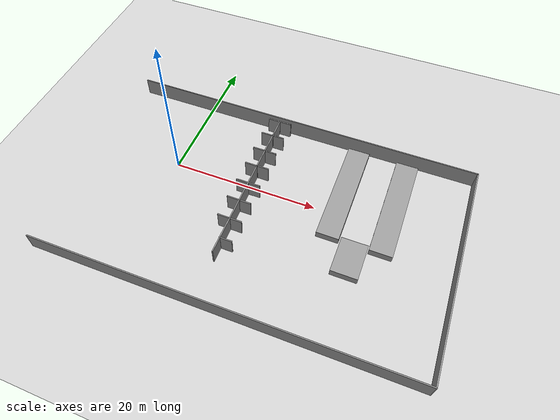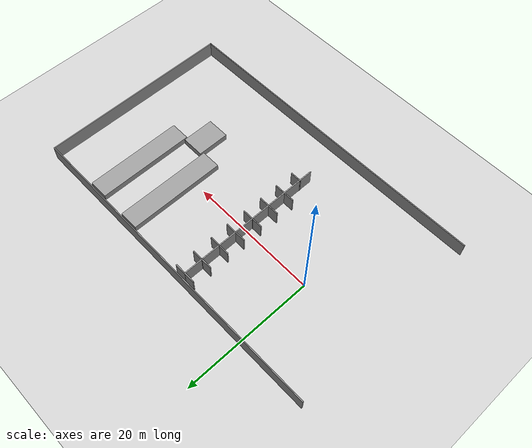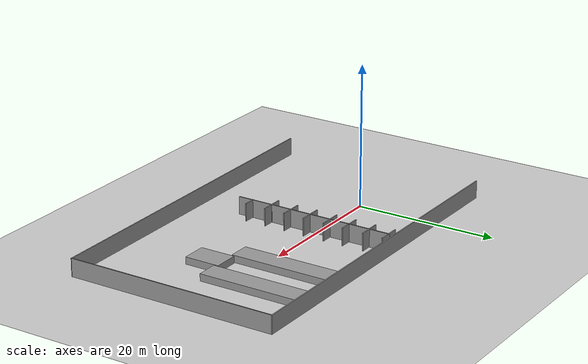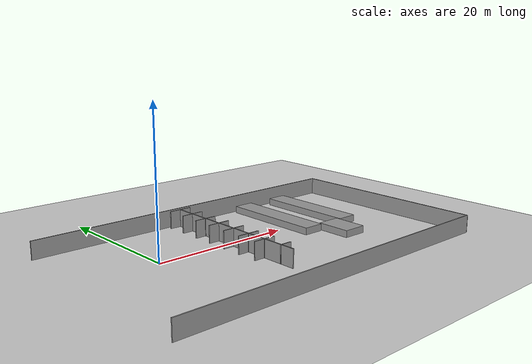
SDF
<sdf version="1.6">
 <world name="default">
  <model name="ground_plane">
   <static>1</static>
   <link name="link">
    <collision name="collision">
     <geometry><plane><normal>0 0 1</normal><size>100 100</size></plane></geometry>
     <surface>
      <contact><collide_bitmask>65535</collide_bitmask></contact>
      <friction><ode><mu>100</mu><mu2>50</mu2></ode></friction>
     </surface>
    </collision>
    <visual name="visual">
     <cast_shadows>0</cast_shadows>
     <geometry><plane><normal>0 0 1</normal><size>100 100</size></plane></geometry>
     <material>
      <script><uri>file://media/materials/scripts/gazebo.material</uri><name>Gazebo/Grey</name></script>
     </material>
    </visual>
   </link>
  </model>
  <model name="Warehouse_Map">
   <link name="Wall_0">
    <pose>-0.000412 -14.8629 0 0 -0 0.007442</pose>
    <visual name="Wall_0_Visual">
     <pose>0 0 1.25 0 -0 0</pose>
     <geometry><box><size>50 0.15 2.5</size></box></geometry>
     <material>
      <script><uri>file://media/materials/scripts/gazebo.material</uri><name>Gazebo/Grey</name></script>
      <ambient>1 1 1 1</ambient>
      <shader type="pixel"/>
     </material>
     <meta><layer>0</layer></meta>
    </visual>
    <collision name="Wall_0_Collision">
     <pose>0 0 1.25 0 -0 0</pose>
     <geometry><box><size>50 0.15 2.5</size></box></geometry>
     <surface>
      <friction>
       <ode><mu>1</mu><mu2>1</mu2><fdir1>0 0 0</fdir1><slip1>0</slip1><slip2>0</slip2></ode>
       <torsional>
        <coefficient>1</coefficient>
        <patch_radius>0</patch_radius>
        <surface_radius>0</surface_radius>
        <use_patch_radius>1</use_patch_radius>
        <ode><slip>0</slip></ode>
       </torsional>
      </friction>
      <bounce><restitution_coefficient>0</restitution_coefficient><threshold>1e+06</threshold></bounce>
      <contact>
       <collide_without_contact>0</collide_without_contact>
       <collide_without_contact_bitmask>1</collide_without_contact_bitmask>
       <collide_bitmask>1</collide_bitmask>
       <ode>
        <soft_cfm>0</soft_cfm>
        <soft_erp>0.2</soft_erp>
        <kp>1e+13</kp>
        <kd>1</kd>
        <max_vel>0.01</max_vel>
        <min_depth>0</min_depth>
       </ode>
       <bullet>
        <split_impulse>1</split_impulse>
        <split_impulse_penetration_threshold>-0.01</split_impulse_penetration_threshold>
        <soft_cfm>0</soft_cfm>
        <soft_erp>0.2</soft_erp>
        <kp>1e+13</kp>
        <kd>1</kd>
       </bullet>
      </contact>
     </surface>
    </collision>
   </link>
   <link name="Wall_10_clone_21_clone_15">
    <pose>-3.7293 14.315 0 0 -0 3.14159</pose>
    <visual name="Wall_10_Visual">
     <pose>0 0 1.25 0 -0 0</pose>
     <geometry><box><size>1.75 0.15 2.5</size></box></geometry>
     <material>
      <script><uri>file://media/materials/scripts/gazebo.material</uri><name>Gazebo/Grey</name></script>
      <ambient>1 1 1 1</ambient>
      <shader type="pixel"/>
     </material>
     <meta><layer>0</layer></meta>
    </visual>
    <collision name="Wall_10_Collision">
     <pose>0 0 1.25 0 -0 0</pose>
     <geometry><box><size>1.75 0.15 2.5</size></box></geometry>
     <surface>
      <friction>
       <ode><mu>1</mu><mu2>1</mu2><fdir1>0 0 0</fdir1><slip1>0</slip1><slip2>0</slip2></ode>
       <torsional>
        <coefficient>1</coefficient>
        <patch_radius>0</patch_radius>
        <surface_radius>0</surface_radius>
        <use_patch_radius>1</use_patch_radius>
        <ode><slip>0</slip></ode>
       </torsional>
      </friction>
      <bounce><restitution_coefficient>0</restitution_coefficient><threshold>1e+06</threshold></bounce>
      <contact>
       <collide_without_contact>0</collide_without_contact>
       <collide_without_contact_bitmask>1</collide_without_contact_bitmask>
       <collide_bitmask>1</collide_bitmask>
       <ode>
        <soft_cfm>0</soft_cfm>
        <soft_erp>0.2</soft_erp>
        <kp>1e+13</kp>
        <kd>1</kd>
        <max_vel>0.01</max_vel>
        <min_depth>0</min_depth>
       </ode>
       <bullet>
        <split_impulse>1</split_impulse>
        <split_impulse_penetration_threshold>-0.01</split_impulse_penetration_threshold>
        <soft_cfm>0</soft_cfm>
        <soft_erp>0.2</soft_erp>
        <kp>1e+13</kp>
        <kd>1</kd>
       </bullet>
      </contact>
     </surface>
    </collision>
   </link>
   <link name="Wall_10_clone_21_clone_16">
    <pose>-2.12793 14.3281 0 0 -0 3.14159</pose>
    <visual name="Wall_10_Visual">
     <pose>0 0 1.25 0 -0 0</pose>
     <geometry><box><size>1.75 0.15 2.5</size></box></geometry>
     <material>
      <script><uri>file://media/materials/scripts/gazebo.material</uri><name>Gazebo/Grey</name></script>
      <ambient>1 1 1 1</ambient>
      <shader type="pixel"/>
     </material>
     <meta><layer>0</layer></meta>
    </visual>
    <collision name="Wall_10_Collision">
     <pose>0 0 1.25 0 -0 0</pose>
     <geometry><box><size>1.75 0.15 2.5</size></box></geometry>
     <surface>
      <friction>
       <ode><mu>1</mu><mu2>1</mu2><fdir1>0 0 0</fdir1><slip1>0</slip1><slip2>0</slip2></ode>
       <torsional>
        <coefficient>1</coefficient>
        <patch_radius>0</patch_radius>
        <surface_radius>0</surface_radius>
        <use_patch_radius>1</use_patch_radius>
        <ode><slip>0</slip></ode>
       </torsional>
      </friction>
      <bounce><restitution_coefficient>0</restitution_coefficient><threshold>1e+06</threshold></bounce>
      <contact>
       <collide_without_contact>0</collide_without_contact>
       <collide_without_contact_bitmask>1</collide_without_contact_bitmask>
       <collide_bitmask>1</collide_bitmask>
       <ode>
        <soft_cfm>0</soft_cfm>
        <soft_erp>0.2</soft_erp>
        <kp>1e+13</kp>
        <kd>1</kd>
        <max_vel>0.01</max_vel>
        <min_depth>0</min_depth>
       </ode>
       <bullet>
        <split_impulse>1</split_impulse>
        <split_impulse_penetration_threshold>-0.01</split_impulse_penetration_threshold>
        <soft_cfm>0</soft_cfm>
        <soft_erp>0.2</soft_erp>
        <kp>1e+13</kp>
        <kd>1</kd>
       </bullet>
      </contact>
     </surface>
    </collision>
   </link>
   <link name="Wall_10_clone_21_clone_17">
    <pose>-3.72044 11.4033 0 0 -0 3.14159</pose>
    <visual name="Wall_10_Visual">
     <pose>0 0 1.25 0 -0 0</pose>
     <geometry><box><size>1.75 0.15 2.5</size></box></geometry>
     <material>
      <script><uri>file://media/materials/scripts/gazebo.material</uri><name>Gazebo/Grey</name></script>
      <ambient>1 1 1 1</ambient>
      <shader type="pixel"/>
     </material>
     <meta><layer>0</layer></meta>
    </visual>
    <collision name="Wall_10_Collision">
     <pose>0 0 1.25 0 -0 0</pose>
     <geometry><box><size>1.75 0.15 2.5</size></box></geometry>
     <surface>
      <friction>
       <ode><mu>1</mu><mu2>1</mu2><fdir1>0 0 0</fdir1><slip1>0</slip1><slip2>0</slip2></ode>
       <torsional>
        <coefficient>1</coefficient>
        <patch_radius>0</patch_radius>
        <surface_radius>0</surface_radius>
        <use_patch_radius>1</use_patch_radius>
        <ode><slip>0</slip></ode>
       </torsional>
      </friction>
      <bounce><restitution_coefficient>0</restitution_coefficient><threshold>1e+06</threshold></bounce>
      <contact>
       <collide_without_contact>0</collide_without_contact>
       <collide_without_contact_bitmask>1</collide_without_contact_bitmask>
       <collide_bitmask>1</collide_bitmask>
       <ode>
        <soft_cfm>0</soft_cfm>
        <soft_erp>0.2</soft_erp>
        <kp>1e+13</kp>
        <kd>1</kd>
        <max_vel>0.01</max_vel>
        <min_depth>0</min_depth>
       </ode>
       <bullet>
        <split_impulse>1</split_impulse>
        <split_impulse_penetration_threshold>-0.01</split_impulse_penetration_threshold>
        <soft_cfm>0</soft_cfm>
        <soft_erp>0.2</soft_erp>
        <kp>1e+13</kp>
        <kd>1</kd>
       </bullet>
      </contact>
     </surface>
    </collision>
   </link>
   <link name="Wall_10_clone_21_clone_18">
    <pose>-3.73765 8.40075 0 0 -0 3.14159</pose>
    <visual name="Wall_10_Visual">
     <pose>0 0 1.25 0 -0 0</pose>
     <geometry><box><size>1.75 0.15 2.5</size></box></geometry>
     <material>
      <script><uri>file://media/materials/scripts/gazebo.material</uri><name>Gazebo/Grey</name></script>
      <ambient>1 1 1 1</ambient>
      <shader type="pixel"/>
     </material>
     <meta><layer>0</layer></meta>
    </visual>
    <collision name="Wall_10_Collision">
     <pose>0 0 1.25 0 -0 0</pose>
     <geometry><box><size>1.75 0.15 2.5</size></box></geometry>
     <surface>
      <friction>
       <ode><mu>1</mu><mu2>1</mu2><fdir1>0 0 0</fdir1><slip1>0</slip1><slip2>0</slip2></ode>
       <torsional>
        <coefficient>1</coefficient>
        <patch_radius>0</patch_radius>
        <surface_radius>0</surface_radius>
        <use_patch_radius>1</use_patch_radius>
        <ode><slip>0</slip></ode>
       </torsional>
      </friction>
      <bounce><restitution_coefficient>0</restitution_coefficient><threshold>1e+06</threshold></bounce>
      <contact>
       <collide_without_contact>0</collide_without_contact>
       <collide_without_contact_bitmask>1</collide_without_contact_bitmask>
       <collide_bitmask>1</collide_bitmask>
       <ode>
        <soft_cfm>0</soft_cfm>
        <soft_erp>0.2</soft_erp>
        <kp>1e+13</kp>
        <kd>1</kd>
        <max_vel>0.01</max_vel>
        <min_depth>0</min_depth>
       </ode>
       <bullet>
        <split_impulse>1</split_impulse>
        <split_impulse_penetration_threshold>-0.01</split_impulse_penetration_threshold>
        <soft_cfm>0</soft_cfm>
        <soft_erp>0.2</soft_erp>
        <kp>1e+13</kp>
        <kd>1</kd>
       </bullet>
      </contact>
     </surface>
    </collision>
   </link>
   <link name="Wall_10_clone_21_clone_19">
    <pose>-3.72806 5.48656 0 0 -0 3.14159</pose>
    <visual name="Wall_10_Visual">
     <pose>0 0 1.25 0 -0 0</pose>
     <geometry><box><size>1.75 0.15 2.5</size></box></geometry>
     <material>
      <script><uri>file://media/materials/scripts/gazebo.material</uri><name>Gazebo/Grey</name></script>
      <ambient>1 1 1 1</ambient>
      <shader type="pixel"/>
     </material>
     <meta><layer>0</layer></meta>
    </visual>
    <collision name="Wall_10_Collision">
     <pose>0 0 1.25 0 -0 0</pose>
     <geometry><box><size>1.75 0.15 2.5</size></box></geometry>
     <surface>
      <friction>
       <ode><mu>1</mu><mu2>1</mu2><fdir1>0 0 0</fdir1><slip1>0</slip1><slip2>0</slip2></ode>
       <torsional>
        <coefficient>1</coefficient>
        <patch_radius>0</patch_radius>
        <surface_radius>0</surface_radius>
        <use_patch_radius>1</use_patch_radius>
        <ode><slip>0</slip></ode>
       </torsional>
      </friction>
      <bounce><restitution_coefficient>0</restitution_coefficient><threshold>1e+06</threshold></bounce>
      <contact>
       <collide_without_contact>0</collide_without_contact>
       <collide_without_contact_bitmask>1</collide_without_contact_bitmask>
       <collide_bitmask>1</collide_bitmask>
       <ode>
        <soft_cfm>0</soft_cfm>
        <soft_erp>0.2</soft_erp>
        <kp>1e+13</kp>
        <kd>1</kd>
        <max_vel>0.01</max_vel>
        <min_depth>0</min_depth>
       </ode>
       <bullet>
        <split_impulse>1</split_impulse>
        <split_impulse_penetration_threshold>-0.01</split_impulse_penetration_threshold>
        <soft_cfm>0</soft_cfm>
        <soft_erp>0.2</soft_erp>
        <kp>1e+13</kp>
        <kd>1</kd>
       </bullet>
      </contact>
     </surface>
    </collision>
   </link>
   <link name="Wall_10_clone_21_clone_20">
    <pose>-3.75053 2.43112 0 0 -0 3.14159</pose>
    <visual name="Wall_10_Visual">
     <pose>0 0 1.25 0 -0 0</pose>
     <geometry><box><size>1.75 0.15 2.5</size></box></geometry>
     <material>
      <script><uri>file://media/materials/scripts/gazebo.material</uri><name>Gazebo/Grey</name></script>
      <ambient>1 1 1 1</ambient>
      <shader type="pixel"/>
     </material>
     <meta><layer>0</layer></meta>
    </visual>
    <collision name="Wall_10_Collision">
     <pose>0 0 1.25 0 -0 0</pose>
     <geometry><box><size>1.75 0.15 2.5</size></box></geometry>
     <surface>
      <friction>
       <ode><mu>1</mu><mu2>1</mu2><fdir1>0 0 0</fdir1><slip1>0</slip1><slip2>0</slip2></ode>
       <torsional>
        <coefficient>1</coefficient>
        <patch_radius>0</patch_radius>
        <surface_radius>0</surface_radius>
        <use_patch_radius>1</use_patch_radius>
        <ode><slip>0</slip></ode>
       </torsional>
      </friction>
      <bounce><restitution_coefficient>0</restitution_coefficient><threshold>1e+06</threshold></bounce>
      <contact>
       <collide_without_contact>0</collide_without_contact>
       <collide_without_contact_bitmask>1</collide_without_contact_bitmask>
       <collide_bitmask>1</collide_bitmask>
       <ode>
        <soft_cfm>0</soft_cfm>
        <soft_erp>0.2</soft_erp>
        <kp>1e+13</kp>
        <kd>1</kd>
        <max_vel>0.01</max_vel>
        <min_depth>0</min_depth>
       </ode>
       <bullet>
        <split_impulse>1</split_impulse>
        <split_impulse_penetration_threshold>-0.01</split_impulse_penetration_threshold>
        <soft_cfm>0</soft_cfm>
        <soft_erp>0.2</soft_erp>
        <kp>1e+13</kp>
        <kd>1</kd>
       </bullet>
      </contact>
     </surface>
    </collision>
   </link>
   <link name="Wall_10_clone_21_clone_21">
    <pose>-3.75447 -0.552222 0 0 -0 3.14159</pose>
    <visual name="Wall_10_Visual">
     <pose>0 0 1.25 0 -0 0</pose>
     <geometry><box><size>1.75 0.15 2.5</size></box></geometry>
     <material>
      <script><uri>file://media/materials/scripts/gazebo.material</uri><name>Gazebo/Grey</name></script>
      <ambient>1 1 1 1</ambient>
      <shader type="pixel"/>
     </material>
     <meta><layer>0</layer></meta>
    </visual>
    <collision name="Wall_10_Collision">
     <pose>0 0 1.25 0 -0 0</pose>
     <geometry><box><size>1.75 0.15 2.5</size></box></geometry>
     <surface>
      <friction>
       <ode><mu>1</mu><mu2>1</mu2><fdir1>0 0 0</fdir1><slip1>0</slip1><slip2>0</slip2></ode>
       <torsional>
        <coefficient>1</coefficient>
        <patch_radius>0</patch_radius>
        <surface_radius>0</surface_radius>
        <use_patch_radius>1</use_patch_radius>
        <ode><slip>0</slip></ode>
       </torsional>
      </friction>
      <bounce><restitution_coefficient>0</restitution_coefficient><threshold>1e+06</threshold></bounce>
      <contact>
       <collide_without_contact>0</collide_without_contact>
       <collide_without_contact_bitmask>1</collide_without_contact_bitmask>
       <collide_bitmask>1</collide_bitmask>
       <ode>
        <soft_cfm>0</soft_cfm>
        <soft_erp>0.2</soft_erp>
        <kp>1e+13</kp>
        <kd>1</kd>
        <max_vel>0.01</max_vel>
        <min_depth>0</min_depth>
       </ode>
       <bullet>
        <split_impulse>1</split_impulse>
        <split_impulse_penetration_threshold>-0.01</split_impulse_penetration_threshold>
        <soft_cfm>0</soft_cfm>
        <soft_erp>0.2</soft_erp>
        <kp>1e+13</kp>
        <kd>1</kd>
       </bullet>
      </contact>
     </surface>
    </collision>
   </link>
   <link name="Wall_10_clone_21_clone_22">
    <pose>-3.72265 -3.56408 0 0 -0 3.14159</pose>
    <visual name="Wall_10_Visual">
     <pose>0 0 1.25 0 -0 0</pose>
     <geometry><box><size>1.75 0.15 2.5</size></box></geometry>
     <material>
      <script><uri>file://media/materials/scripts/gazebo.material</uri><name>Gazebo/Grey</name></script>
      <ambient>1 1 1 1</ambient>
      <shader type="pixel"/>
     </material>
     <meta><layer>0</layer></meta>
    </visual>
    <collision name="Wall_10_Collision">
     <pose>0 0 1.25 0 -0 0</pose>
     <geometry><box><size>1.75 0.15 2.5</size></box></geometry>
     <surface>
      <friction>
       <ode><mu>1</mu><mu2>1</mu2><fdir1>0 0 0</fdir1><slip1>0</slip1><slip2>0</slip2></ode>
       <torsional>
        <coefficient>1</coefficient>
        <patch_radius>0</patch_radius>
        <surface_radius>0</surface_radius>
        <use_patch_radius>1</use_patch_radius>
        <ode><slip>0</slip></ode>
       </torsional>
      </friction>
      <bounce><restitution_coefficient>0</restitution_coefficient><threshold>1e+06</threshold></bounce>
      <contact>
       <collide_without_contact>0</collide_without_contact>
       <collide_without_contact_bitmask>1</collide_without_contact_bitmask>
       <collide_bitmask>1</collide_bitmask>
       <ode>
        <soft_cfm>0</soft_cfm>
        <soft_erp>0.2</soft_erp>
        <kp>1e+13</kp>
        <kd>1</kd>
        <max_vel>0.01</max_vel>
        <min_depth>0</min_depth>
       </ode>
       <bullet>
        <split_impulse>1</split_impulse>
        <split_impulse_penetration_threshold>-0.01</split_impulse_penetration_threshold>
        <soft_cfm>0</soft_cfm>
        <soft_erp>0.2</soft_erp>
        <kp>1e+13</kp>
        <kd>1</kd>
       </bullet>
      </contact>
     </surface>
    </collision>
   </link>
   <link name="Wall_10_clone_21_clone_24">
    <pose>-2.17277 -6.58574 0 0 -0 3.14159</pose>
    <visual name="Wall_10_Visual">
     <pose>0 0 1.25 0 -0 0</pose>
     <geometry><box><size>1.75 0.15 2.5</size></box></geometry>
     <material>
      <script><uri>file://media/materials/scripts/gazebo.material</uri><name>Gazebo/Grey</name></script>
      <ambient>1 1 1 1</ambient>
      <shader type="pixel"/>
     </material>
     <meta><layer>0</layer></meta>
    </visual>
    <collision name="Wall_10_Collision">
     <pose>0 0 1.25 0 -0 0</pose>
     <geometry><box><size>1.75 0.15 2.5</size></box></geometry>
     <surface>
      <friction>
       <ode><mu>1</mu><mu2>1</mu2><fdir1>0 0 0</fdir1><slip1>0</slip1><slip2>0</slip2></ode>
       <torsional>
        <coefficient>1</coefficient>
        <patch_radius>0</patch_radius>
        <surface_radius>0</surface_radius>
        <use_patch_radius>1</use_patch_radius>
        <ode><slip>0</slip></ode>
       </torsional>
      </friction>
      <bounce><restitution_coefficient>0</restitution_coefficient><threshold>1e+06</threshold></bounce>
      <contact>
       <collide_without_contact>0</collide_without_contact>
       <collide_without_contact_bitmask>1</collide_without_contact_bitmask>
       <collide_bitmask>1</collide_bitmask>
       <ode>
        <soft_cfm>0</soft_cfm>
        <soft_erp>0.2</soft_erp>
        <kp>1e+13</kp>
        <kd>1</kd>
        <max_vel>0.01</max_vel>
        <min_depth>0</min_depth>
       </ode>
       <bullet>
        <split_impulse>1</split_impulse>
        <split_impulse_penetration_threshold>-0.01</split_impulse_penetration_threshold>
        <soft_cfm>0</soft_cfm>
        <soft_erp>0.2</soft_erp>
        <kp>1e+13</kp>
        <kd>1</kd>
       </bullet>
      </contact>
     </surface>
    </collision>
   </link>
   <link name="Wall_10_clone_21_clone_25">
    <pose>-2.18669 -3.57219 0 0 -0 3.14159</pose>
    <visual name="Wall_10_Visual">
     <pose>0 0 1.25 0 -0 0</pose>
     <geometry><box><size>1.75 0.15 2.5</size></box></geometry>
     <material>
      <script><uri>file://media/materials/scripts/gazebo.material</uri><name>Gazebo/Grey</name></script>
      <ambient>1 1 1 1</ambient>
      <shader type="pixel"/>
     </material>
     <meta><layer>0</layer></meta>
    </visual>
    <collision name="Wall_10_Collision">
     <pose>0 0 1.25 0 -0 0</pose>
     <geometry><box><size>1.75 0.15 2.5</size></box></geometry>
     <surface>
      <friction>
       <ode><mu>1</mu><mu2>1</mu2><fdir1>0 0 0</fdir1><slip1>0</slip1><slip2>0</slip2></ode>
       <torsional>
        <coefficient>1</coefficient>
        <patch_radius>0</patch_radius>
        <surface_radius>0</surface_radius>
        <use_patch_radius>1</use_patch_radius>
        <ode><slip>0</slip></ode>
       </torsional>
      </friction>
      <bounce><restitution_coefficient>0</restitution_coefficient><threshold>1e+06</threshold></bounce>
      <contact>
       <collide_without_contact>0</collide_without_contact>
       <collide_without_contact_bitmask>1</collide_without_contact_bitmask>
       <collide_bitmask>1</collide_bitmask>
       <ode>
        <soft_cfm>0</soft_cfm>
        <soft_erp>0.2</soft_erp>
        <kp>1e+13</kp>
        <kd>1</kd>
        <max_vel>0.01</max_vel>
        <min_depth>0</min_depth>
       </ode>
       <bullet>
        <split_impulse>1</split_impulse>
        <split_impulse_penetration_threshold>-0.01</split_impulse_penetration_threshold>
        <soft_cfm>0</soft_cfm>
        <soft_erp>0.2</soft_erp>
        <kp>1e+13</kp>
        <kd>1</kd>
       </bullet>
      </contact>
     </surface>
    </collision>
   </link>
   <link name="Wall_10_clone_21_clone_26">
    <pose>-2.18422 -0.576818 0 0 -0 3.14159</pose>
    <visual name="Wall_10_Visual">
     <pose>0 0 1.25 0 -0 0</pose>
     <geometry><box><size>1.75 0.15 2.5</size></box></geometry>
     <material>
      <script><uri>file://media/materials/scripts/gazebo.material</uri><name>Gazebo/Grey</name></script>
      <ambient>1 1 1 1</ambient>
      <shader type="pixel"/>
     </material>
     <meta><layer>0</layer></meta>
    </visual>
    <collision name="Wall_10_Collision">
     <pose>0 0 1.25 0 -0 0</pose>
     <geometry><box><size>1.75 0.15 2.5</size></box></geometry>
     <surface>
      <friction>
       <ode><mu>1</mu><mu2>1</mu2><fdir1>0 0 0</fdir1><slip1>0</slip1><slip2>0</slip2></ode>
       <torsional>
        <coefficient>1</coefficient>
        <patch_radius>0</patch_radius>
        <surface_radius>0</surface_radius>
        <use_patch_radius>1</use_patch_radius>
        <ode><slip>0</slip></ode>
       </torsional>
      </friction>
      <bounce><restitution_coefficient>0</restitution_coefficient><threshold>1e+06</threshold></bounce>
      <contact>
       <collide_without_contact>0</collide_without_contact>
       <collide_without_contact_bitmask>1</collide_without_contact_bitmask>
       <collide_bitmask>1</collide_bitmask>
       <ode>
        <soft_cfm>0</soft_cfm>
        <soft_erp>0.2</soft_erp>
        <kp>1e+13</kp>
        <kd>1</kd>
        <max_vel>0.01</max_vel>
        <min_depth>0</min_depth>
       </ode>
       <bullet>
        <split_impulse>1</split_impulse>
        <split_impulse_penetration_threshold>-0.01</split_impulse_penetration_threshold>
        <soft_cfm>0</soft_cfm>
        <soft_erp>0.2</soft_erp>
        <kp>1e+13</kp>
        <kd>1</kd>
       </bullet>
      </contact>
     </surface>
    </collision>
   </link>
   <link name="Wall_10_clone_21_clone_27">
    <pose>-2.14965 2.44399 0 0 -0 3.14159</pose>
    <visual name="Wall_10_Visual">
     <pose>0 0 1.25 0 -0 0</pose>
     <geometry><box><size>1.75 0.15 2.5</size></box></geometry>
     <material>
      <script><uri>file://media/materials/scripts/gazebo.material</uri><name>Gazebo/Grey</name></script>
      <ambient>1 1 1 1</ambient>
      <shader type="pixel"/>
     </material>
     <meta><layer>0</layer></meta>
    </visual>
    <collision name="Wall_10_Collision">
     <pose>0 0 1.25 0 -0 0</pose>
     <geometry><box><size>1.75 0.15 2.5</size></box></geometry>
     <surface>
      <friction>
       <ode><mu>1</mu><mu2>1</mu2><fdir1>0 0 0</fdir1><slip1>0</slip1><slip2>0</slip2></ode>
       <torsional>
        <coefficient>1</coefficient>
        <patch_radius>0</patch_radius>
        <surface_radius>0</surface_radius>
        <use_patch_radius>1</use_patch_radius>
        <ode><slip>0</slip></ode>
       </torsional>
      </friction>
      <bounce><restitution_coefficient>0</restitution_coefficient><threshold>1e+06</threshold></bounce>
      <contact>
       <collide_without_contact>0</collide_without_contact>
       <collide_without_contact_bitmask>1</collide_without_contact_bitmask>
       <collide_bitmask>1</collide_bitmask>
       <ode>
        <soft_cfm>0</soft_cfm>
        <soft_erp>0.2</soft_erp>
        <kp>1e+13</kp>
        <kd>1</kd>
        <max_vel>0.01</max_vel>
        <min_depth>0</min_depth>
       </ode>
       <bullet>
        <split_impulse>1</split_impulse>
        <split_impulse_penetration_threshold>-0.01</split_impulse_penetration_threshold>
        <soft_cfm>0</soft_cfm>
        <soft_erp>0.2</soft_erp>
        <kp>1e+13</kp>
        <kd>1</kd>
       </bullet>
      </contact>
     </surface>
    </collision>
   </link>
   <link name="Wall_10_clone_21_clone_28">
    <pose>-2.13443 5.51692 0 0 -0 3.14159</pose>
    <visual name="Wall_10_Visual">
     <pose>0 0 1.25 0 -0 0</pose>
     <geometry><box><size>1.75 0.15 2.5</size></box></geometry>
     <material>
      <script><uri>file://media/materials/scripts/gazebo.material</uri><name>Gazebo/Grey</name></script>
      <ambient>1 1 1 1</ambient>
      <shader type="pixel"/>
     </material>
     <meta><layer>0</layer></meta>
    </visual>
    <collision name="Wall_10_Collision">
     <pose>0 0 1.25 0 -0 0</pose>
     <geometry><box><size>1.75 0.15 2.5</size></box></geometry>
     <surface>
      <friction>
       <ode><mu>1</mu><mu2>1</mu2><fdir1>0 0 0</fdir1><slip1>0</slip1><slip2>0</slip2></ode>
       <torsional>
        <coefficient>1</coefficient>
        <patch_radius>0</patch_radius>
        <surface_radius>0</surface_radius>
        <use_patch_radius>1</use_patch_radius>
        <ode><slip>0</slip></ode>
       </torsional>
      </friction>
      <bounce><restitution_coefficient>0</restitution_coefficient><threshold>1e+06</threshold></bounce>
      <contact>
       <collide_without_contact>0</collide_without_contact>
       <collide_without_contact_bitmask>1</collide_without_contact_bitmask>
       <collide_bitmask>1</collide_bitmask>
       <ode>
        <soft_cfm>0</soft_cfm>
        <soft_erp>0.2</soft_erp>
        <kp>1e+13</kp>
        <kd>1</kd>
        <max_vel>0.01</max_vel>
        <min_depth>0</min_depth>
       </ode>
       <bullet>
        <split_impulse>1</split_impulse>
        <split_impulse_penetration_threshold>-0.01</split_impulse_penetration_threshold>
        <soft_cfm>0</soft_cfm>
        <soft_erp>0.2</soft_erp>
        <kp>1e+13</kp>
        <kd>1</kd>
       </bullet>
      </contact>
     </surface>
    </collision>
   </link>
   <link name="Wall_10_clone_21_clone_29">
    <pose>-2.18984 8.37839 0 0 -0 3.14159</pose>
    <visual name="Wall_10_Visual">
     <pose>0 0 1.25 0 -0 0</pose>
     <geometry><box><size>1.75 0.15 2.5</size></box></geometry>
     <material>
      <script><uri>file://media/materials/scripts/gazebo.material</uri><name>Gazebo/Grey</name></script>
      <ambient>1 1 1 1</ambient>
      <shader type="pixel"/>
     </material>
     <meta><layer>0</layer></meta>
    </visual>
    <collision name="Wall_10_Collision">
     <pose>0 0 1.25 0 -0 0</pose>
     <geometry><box><size>1.75 0.15 2.5</size></box></geometry>
     <surface>
      <friction>
       <ode><mu>1</mu><mu2>1</mu2><fdir1>0 0 0</fdir1><slip1>0</slip1><slip2>0</slip2></ode>
       <torsional>
        <coefficient>1</coefficient>
        <patch_radius>0</patch_radius>
        <surface_radius>0</surface_radius>
        <use_patch_radius>1</use_patch_radius>
        <ode><slip>0</slip></ode>
       </torsional>
      </friction>
      <bounce><restitution_coefficient>0</restitution_coefficient><threshold>1e+06</threshold></bounce>
      <contact>
       <collide_without_contact>0</collide_without_contact>
       <collide_without_contact_bitmask>1</collide_without_contact_bitmask>
       <collide_bitmask>1</collide_bitmask>
       <ode>
        <soft_cfm>0</soft_cfm>
        <soft_erp>0.2</soft_erp>
        <kp>1e+13</kp>
        <kd>1</kd>
        <max_vel>0.01</max_vel>
        <min_depth>0</min_depth>
       </ode>
       <bullet>
        <split_impulse>1</split_impulse>
        <split_impulse_penetration_threshold>-0.01</split_impulse_penetration_threshold>
        <soft_cfm>0</soft_cfm>
        <soft_erp>0.2</soft_erp>
        <kp>1e+13</kp>
        <kd>1</kd>
       </bullet>
      </contact>
     </surface>
    </collision>
   </link>
   <link name="Wall_10_clone_21_clone_30">
    <pose>-2.1729 11.4342 0 0 -0 3.14159</pose>
    <visual name="Wall_10_Visual">
     <pose>0 0 1.25 0 -0 0</pose>
     <geometry><box><size>1.75 0.15 2.5</size></box></geometry>
     <material>
      <script><uri>file://media/materials/scripts/gazebo.material</uri><name>Gazebo/Grey</name></script>
      <ambient>1 1 1 1</ambient>
      <shader type="pixel"/>
     </material>
     <meta><layer>0</layer></meta>
    </visual>
    <collision name="Wall_10_Collision">
     <pose>0 0 1.25 0 -0 0</pose>
     <geometry><box><size>1.75 0.15 2.5</size></box></geometry>
     <surface>
      <friction>
       <ode><mu>1</mu><mu2>1</mu2><fdir1>0 0 0</fdir1><slip1>0</slip1><slip2>0</slip2></ode>
       <torsional>
        <coefficient>1</coefficient>
        <patch_radius>0</patch_radius>
        <surface_radius>0</surface_radius>
        <use_patch_radius>1</use_patch_radius>
        <ode><slip>0</slip></ode>
       </torsional>
      </friction>
      <bounce><restitution_coefficient>0</restitution_coefficient><threshold>1e+06</threshold></bounce>
      <contact>
       <collide_without_contact>0</collide_without_contact>
       <collide_without_contact_bitmask>1</collide_without_contact_bitmask>
       <collide_bitmask>1</collide_bitmask>
       <ode>
        <soft_cfm>0</soft_cfm>
        <soft_erp>0.2</soft_erp>
        <kp>1e+13</kp>
        <kd>1</kd>
        <max_vel>0.01</max_vel>
        <min_depth>0</min_depth>
       </ode>
       <bullet>
        <split_impulse>1</split_impulse>
        <split_impulse_penetration_threshold>-0.01</split_impulse_penetration_threshold>
        <soft_cfm>0</soft_cfm>
        <soft_erp>0.2</soft_erp>
        <kp>1e+13</kp>
        <kd>1</kd>
       </bullet>
      </contact>
     </surface>
    </collision>
   </link>
   <link name="Wall_11_clone_1">
    <pose>-2.93469 2.78624 0 0 0 -1.5708</pose>
    <visual name="Wall_11_Visual">
     <pose>0 0 1.25 0 -0 0</pose>
     <geometry><box><size>23 0.15 2.5</size></box></geometry>
     <material>
      <script><uri>file://media/materials/scripts/gazebo.material</uri><name>Gazebo/Grey</name></script>
      <ambient>1 1 1 1</ambient>
      <shader type="pixel"/>
     </material>
     <meta><layer>0</layer></meta>
    </visual>
    <collision name="Wall_11_Collision">
     <pose>0 0 1.25 0 -0 0</pose>
     <geometry><box><size>23 0.15 2.5</size></box></geometry>
     <surface>
      <friction>
       <ode><mu>1</mu><mu2>1</mu2><fdir1>0 0 0</fdir1><slip1>0</slip1><slip2>0</slip2></ode>
       <torsional>
        <coefficient>1</coefficient>
        <patch_radius>0</patch_radius>
        <surface_radius>0</surface_radius>
        <use_patch_radius>1</use_patch_radius>
        <ode><slip>0</slip></ode>
       </torsional>
      </friction>
      <bounce><restitution_coefficient>0</restitution_coefficient><threshold>1e+06</threshold></bounce>
      <contact>
       <collide_without_contact>0</collide_without_contact>
       <collide_without_contact_bitmask>1</collide_without_contact_bitmask>
       <collide_bitmask>1</collide_bitmask>
       <ode>
        <soft_cfm>0</soft_cfm>
        <soft_erp>0.2</soft_erp>
        <kp>1e+13</kp>
        <kd>1</kd>
        <max_vel>0.01</max_vel>
        <min_depth>0</min_depth>
       </ode>
       <bullet>
        <split_impulse>1</split_impulse>
        <split_impulse_penetration_threshold>-0.01</split_impulse_penetration_threshold>
        <soft_cfm>0</soft_cfm>
        <soft_erp>0.2</soft_erp>
        <kp>1e+13</kp>
        <kd>1</kd>
       </bullet>
      </contact>
     </surface>
    </collision>
   </link>
   <link name="Wall_4">
    <pose>24.9246 0.123895 0 0 -0 1.57075</pose>
    <visual name="Wall_4_Visual">
     <pose>0 0 1.25 0 -0 0</pose>
     <geometry><box><size>29.7525 0.15 2.5</size></box></geometry>
     <material>
      <script><uri>file://media/materials/scripts/gazebo.material</uri><name>Gazebo/Grey</name></script>
      <ambient>1 1 1 1</ambient>
      <shader type="pixel"/>
     </material>
     <meta><layer>0</layer></meta>
    </visual>
    <collision name="Wall_4_Collision">
     <pose>0 0 1.25 0 -0 0</pose>
     <geometry><box><size>29.7525 0.15 2.5</size></box></geometry>
     <surface>
      <friction>
       <ode><mu>1</mu><mu2>1</mu2><fdir1>0 0 0</fdir1><slip1>0</slip1><slip2>0</slip2></ode>
       <torsional>
        <coefficient>1</coefficient>
        <patch_radius>0</patch_radius>
        <surface_radius>0</surface_radius>
        <use_patch_radius>1</use_patch_radius>
        <ode><slip>0</slip></ode>
       </torsional>
      </friction>
      <bounce><restitution_coefficient>0</restitution_coefficient><threshold>1e+06</threshold></bounce>
      <contact>
       <collide_without_contact>0</collide_without_contact>
       <collide_without_contact_bitmask>1</collide_without_contact_bitmask>
       <collide_bitmask>1</collide_bitmask>
       <ode>
        <soft_cfm>0</soft_cfm>
        <soft_erp>0.2</soft_erp>
        <kp>1e+13</kp>
        <kd>1</kd>
        <max_vel>0.01</max_vel>
        <min_depth>0</min_depth>
       </ode>
       <bullet>
        <split_impulse>1</split_impulse>
        <split_impulse_penetration_threshold>-0.01</split_impulse_penetration_threshold>
        <soft_cfm>0</soft_cfm>
        <soft_erp>0.2</soft_erp>
        <kp>1e+13</kp>
        <kd>1</kd>
       </bullet>
      </contact>
     </surface>
    </collision>
   </link>
   <link name="Wall_7">
    <pose>0.000278 15.0489 0 0 -0 3.14159</pose>
    <visual name="Wall_7_Visual">
     <pose>0 0 1.25 0 -0 0</pose>
     <geometry><box><size>50 0.15 2.5</size></box></geometry>
     <material>
      <script><uri>file://media/materials/scripts/gazebo.material</uri><name>Gazebo/Grey</name></script>
      <ambient>1 1 1 1</ambient>
      <shader type="pixel"/>
     </material>
     <meta><layer>0</layer></meta>
    </visual>
    <collision name="Wall_7_Collision">
     <pose>0 0 1.25 0 -0 0</pose>
     <geometry><box><size>50 0.15 2.5</size></box></geometry>
     <surface>
      <friction>
       <ode><mu>1</mu><mu2>1</mu2><fdir1>0 0 0</fdir1><slip1>0</slip1><slip2>0</slip2></ode>
       <torsional>
        <coefficient>1</coefficient>
        <patch_radius>0</patch_radius>
        <surface_radius>0</surface_radius>
        <use_patch_radius>1</use_patch_radius>
        <ode><slip>0</slip></ode>
       </torsional>
      </friction>
      <bounce><restitution_coefficient>0</restitution_coefficient><threshold>1e+06</threshold></bounce>
      <contact>
       <collide_without_contact>0</collide_without_contact>
       <collide_without_contact_bitmask>1</collide_without_contact_bitmask>
       <collide_bitmask>1</collide_bitmask>
       <ode>
        <soft_cfm>0</soft_cfm>
        <soft_erp>0.2</soft_erp>
        <kp>1e+13</kp>
        <kd>1</kd>
        <max_vel>0.01</max_vel>
        <min_depth>0</min_depth>
       </ode>
       <bullet>
        <split_impulse>1</split_impulse>
        <split_impulse_penetration_threshold>-0.01</split_impulse_penetration_threshold>
        <soft_cfm>0</soft_cfm>
        <soft_erp>0.2</soft_erp>
        <kp>1e+13</kp>
        <kd>1</kd>
       </bullet>
      </contact>
     </surface>
    </collision>
   </link>
   <link name="link_2">
    <inertial>
     <mass>1</mass>
     <inertia>
      <ixx>0.166667</ixx>
      <ixy>0</ixy>
      <ixz>0</ixz>
      <iyy>0.166667</iyy>
      <iyz>0</iyz>
      <izz>0.166667</izz>
     </inertia>
    </inertial>
    <pose>9.03197 6.8986 0.5 0 -0 0</pose>
    <visual name="visual">
     <geometry><box><size>3 15 1</size></box></geometry>
     <material>
      <lighting>1</lighting>
      <script><uri>file://media/materials/scripts/gazebo.material</uri><name>Gazebo/Grey</name></script>
      <shader type="pixel"><normal_map>__default__</normal_map></shader>
      <ambient>0.3 0.3 0.3 1</ambient>
      <diffuse>0.7 0.7 0.7 1</diffuse>
      <specular>0.01 0.01 0.01 1</specular>
      <emissive>0 0 0 1</emissive>
     </material>
    </visual>
    <collision name="collision">
     <geometry><box><size>1 1 1</size></box></geometry>
     <surface>
      <friction>
       <ode><mu>1</mu><mu2>1</mu2><fdir1>0 0 0</fdir1><slip1>0</slip1><slip2>0</slip2></ode>
       <torsional>
        <coefficient>1</coefficient>
        <patch_radius>0</patch_radius>
        <surface_radius>0</surface_radius>
        <use_patch_radius>1</use_patch_radius>
        <ode><slip>0</slip></ode>
       </torsional>
      </friction>
      <bounce><restitution_coefficient>0</restitution_coefficient><threshold>1e+06</threshold></bounce>
      <contact>
       <collide_without_contact>0</collide_without_contact>
       <collide_without_contact_bitmask>1</collide_without_contact_bitmask>
       <collide_bitmask>1</collide_bitmask>
       <ode>
        <soft_cfm>0</soft_cfm>
        <soft_erp>0.2</soft_erp>
        <kp>1e+13</kp>
        <kd>1</kd>
        <max_vel>0.01</max_vel>
        <min_depth>0</min_depth>
       </ode>
       <bullet>
        <split_impulse>1</split_impulse>
        <split_impulse_penetration_threshold>-0.01</split_impulse_penetration_threshold>
        <soft_cfm>0</soft_cfm>
        <soft_erp>0.2</soft_erp>
        <kp>1e+13</kp>
        <kd>1</kd>
       </bullet>
      </contact>
     </surface>
    </collision>
   </link>
   <link name="link_2_clone">
    <inertial>
     <mass>1</mass>
     <inertia>
      <ixx>0.166667</ixx>
      <ixy>0</ixy>
      <ixz>0</ixz>
      <iyy>0.166667</iyy>
      <iyz>0</iyz>
      <izz>0.166667</izz>
     </inertia>
    </inertial>
    <pose>15.9013 6.85249 0.5 0 -0 0</pose>
    <visual name="visual">
     <geometry><box><size>3 15 1</size></box></geometry>
     <material>
      <lighting>1</lighting>
      <script><uri>file://media/materials/scripts/gazebo.material</uri><name>Gazebo/Grey</name></script>
      <shader type="pixel"><normal_map>__default__</normal_map></shader>
      <ambient>0.3 0.3 0.3 1</ambient>
      <diffuse>0.7 0.7 0.7 1</diffuse>
      <specular>0.01 0.01 0.01 1</specular>
      <emissive>0 0 0 1</emissive>
     </material>
    </visual>
    <collision name="collision">
     <geometry><box><size>1 1 1</size></box></geometry>
     <surface>
      <friction>
       <ode><mu>1</mu><mu2>1</mu2><fdir1>0 0 0</fdir1><slip1>0</slip1><slip2>0</slip2></ode>
       <torsional>
        <coefficient>1</coefficient>
        <patch_radius>0</patch_radius>
        <surface_radius>0</surface_radius>
        <use_patch_radius>1</use_patch_radius>
        <ode><slip>0</slip></ode>
       </torsional>
      </friction>
      <bounce><restitution_coefficient>0</restitution_coefficient><threshold>1e+06</threshold></bounce>
      <contact>
       <collide_without_contact>0</collide_without_contact>
       <collide_without_contact_bitmask>1</collide_without_contact_bitmask>
       <collide_bitmask>1</collide_bitmask>
       <ode>
        <soft_cfm>0</soft_cfm>
        <soft_erp>0.2</soft_erp>
        <kp>1e+13</kp>
        <kd>1</kd>
        <max_vel>0.01</max_vel>
        <min_depth>0</min_depth>
       </ode>
       <bullet>
        <split_impulse>1</split_impulse>
        <split_impulse_penetration_threshold>-0.01</split_impulse_penetration_threshold>
        <soft_cfm>0</soft_cfm>
        <soft_erp>0.2</soft_erp>
        <kp>1e+13</kp>
        <kd>1</kd>
       </bullet>
      </contact>
     </surface>
    </collision>
   </link>
   <link name="link_2_clone_0">
    <inertial>
     <mass>1</mass>
     <inertia>
      <ixx>0.166667</ixx>
      <ixy>0</ixy>
      <ixz>0</ixz>
      <iyy>0.166667</iyy>
      <iyz>0</iyz>
      <izz>0.166667</izz>
     </inertia>
    </inertial>
    <pose>12.5024 -2.61659 0.5 0 -0 0</pose>
    <visual name="visual">
     <geometry><box><size>3.5 5 1</size></box></geometry>
     <material>
      <lighting>1</lighting>
      <script><uri>file://media/materials/scripts/gazebo.material</uri><name>Gazebo/Grey</name></script>
      <shader type="pixel"><normal_map>__default__</normal_map></shader>
      <ambient>0.3 0.3 0.3 1</ambient>
      <diffuse>0.7 0.7 0.7 1</diffuse>
      <specular>0.01 0.01 0.01 1</specular>
      <emissive>0 0 0 1</emissive>
     </material>
    </visual>
    <collision name="collision">
     <geometry><box><size>1 1 1</size></box></geometry>
     <surface>
      <friction>
       <ode><mu>1</mu><mu2>1</mu2><fdir1>0 0 0</fdir1><slip1>0</slip1><slip2>0</slip2></ode>
       <torsional>
        <coefficient>1</coefficient>
        <patch_radius>0</patch_radius>
        <surface_radius>0</surface_radius>
        <use_patch_radius>1</use_patch_radius>
        <ode><slip>0</slip></ode>
       </torsional>
      </friction>
      <bounce><restitution_coefficient>0</restitution_coefficient><threshold>1e+06</threshold></bounce>
      <contact>
       <collide_without_contact>0</collide_without_contact>
       <collide_without_contact_bitmask>1</collide_without_contact_bitmask>
       <collide_bitmask>1</collide_bitmask>
       <ode>
        <soft_cfm>0</soft_cfm>
        <soft_erp>0.2</soft_erp>
        <kp>1e+13</kp>
        <kd>1</kd>
        <max_vel>0.01</max_vel>
        <min_depth>0</min_depth>
       </ode>
       <bullet>
        <split_impulse>1</split_impulse>
        <split_impulse_penetration_threshold>-0.01</split_impulse_penetration_threshold>
        <soft_cfm>0</soft_cfm>
        <soft_erp>0.2</soft_erp>
        <kp>1e+13</kp>
        <kd>1</kd>
       </bullet>
      </contact>
     </surface>
    </collision>
   </link>
   <static>1</static>
   <pose>13.9577 -3.44941 0 0 -0 0</pose>
  </model>
 </world>
</sdf>
